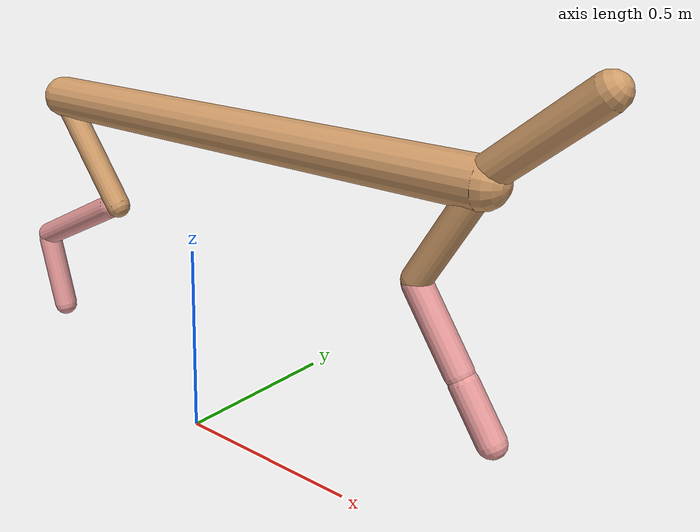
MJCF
<mujoco model="cheetah">
  <compiler angle="radian" coordinate="local" inertiafromgeom="true" settotalmass="14" />
  <default>
    <joint armature=".1" damping=".01" limited="true" solimplimit="0 .8 .03" solreflimit=".02 1" stiffness="8" />
    <geom conaffinity="0" condim="3" contype="1" friction="0.8 .1 .1" rgba="0.8 0.6 .4 1" solimp="0.0 0.8 0.01" solref="0.02 1" />
    <motor ctrllimited="true" ctrlrange="-1 1" />
  </default>
  <size nstack="300000" nuser_geom="1" />
  <option gravity="0 0 -9.81" timestep="0.01" />
  <worldbody>
    <body name="torso" pos="0.0 0.0 0.8319859055637117">
      <joint armature="0" axis="1 0 0" damping="0" limited="false" name="ignorex" pos="0 0 0" stiffness="0" type="slide" />
      <joint armature="0" axis="0 0 1" damping="0" limited="false" name="ignorez" pos="0 0 0" stiffness="0" type="slide" />
      <joint armature="0" axis="0 1 0" damping="0" limited="false" name="ignorey" pos="0 0 0" stiffness="0" type="hinge" />
      <geom fromto="-0.5 0.0 0.0 0.7980082882283585 0.0 0.0" name="torso" size="0.05417100784204426" type="capsule" />
      <geom axisangle="0 1 0 .87" name="head" pos="0.8980082882283583 0.0 0.1" size="0.038973467195933774 0.15" type="capsule" />

      <body name="bthigh" pos="-.5 0 0">
        <joint axis="0 1 0" damping="6" name="bthigh" pos="0 0 0" range="-.52 1.05" stiffness="240" type="hinge" />
        <geom axisangle="0 1 0 -3.8" name="bthigh" pos="0.10988865923804197 0.0 -0.14285525700945456" size="0.03242960180182869 0.16121860703960864" type="capsule" />
        <body name="bshin" pos="0.17977731847608394 0.0 -0.2757105140189091">
          <joint axis="0 1 0" damping="4.5" name="bshin" pos="0 0 0" range="-.785 .785" stiffness="180" type="hinge" />
          <geom axisangle="0 1 0 -2.03" name="bshin" pos="-0.1550065825548641 0.0 -0.07750329127743205" rgba="0.9 0.6 0.6 1" size="0.03242960180182869 0.1667778693513193" type="capsule" />
          <body name="bfoot" pos="-0.3100131651097282 0.0 -0.1550065825548641">
            <joint axis="0 1 0" damping="3" name="bfoot" pos="0 0 0" range="-.4 .785" stiffness="120" type="hinge" />
            <geom axisangle="0 1 0 -.27" name="bfoot" pos="0.033106607509299696 0.0 -0.10704469761340235" rgba="0.9 0.6 0.6 1" size="0.03242960180182869 0.10451413146016009" type="capsule" />
            <inertial mass="10" />
          </body>
        </body>
      </body>
      <body name="fthigh" pos="0.7980082882283583 0.0 0.0">
        <joint axis="0 1 0" damping="4.5" name="fthigh" pos="0 0 0" range="-1.5 0.8" stiffness="180" type="hinge" />
        <geom axisangle="0 1 0 .52" name="fthigh" pos="-0.0678538492705819 0.0 -0.11632088446385466" size="0.03309686117458915 0.12874067445694887" type="capsule" />
        <body name="fshin" pos="-0.1357076985411638 0.0 -0.23264176892770932">
          <joint axis="0 1 0" damping="3" name="fshin" pos="0 0 0" range="-1.2 1.1" stiffness="120" type="hinge" />
          <geom axisangle="0 1 0 -.6" name="fshin" pos="0.06301246423798744 0.0 -0.08724802740644415" rgba="0.9 0.6 0.6 1" size="0.03309686117458915 0.10260534956719232" type="capsule" />
          <body name="ffoot" pos="0.12602492847597488 0.0 -0.1744960548128883">
            <joint axis="0 1 0" damping="1.5" name="ffoot" pos="0 0 0" range="-3.1 -0.3" stiffness="60" type="hinge" />
            <geom axisangle="0 1 0 -.6" name="ffoot" pos="0.04378775651511558 0.0 -0.06811428791240202" rgba="0.9 0.6 0.6 1" size="0.03309686117458915 0.06775824971418362" type="capsule" />
            <inertial mass="10" />
          </body>
        </body>
      </body>
    </body>
  </worldbody>
  <actuator>
    <motor gear="120" joint="bthigh" name="bthigh" />
    <motor gear="90" joint="bshin" name="bshin" />
    <motor gear="60" joint="bfoot" name="bfoot" />
    <motor gear="120" joint="fthigh" name="fthigh" />
    <motor gear="60" joint="fshin" name="fshin" />
    <motor gear="30" joint="ffoot" name="ffoot" />
  </actuator>
</mujoco>
